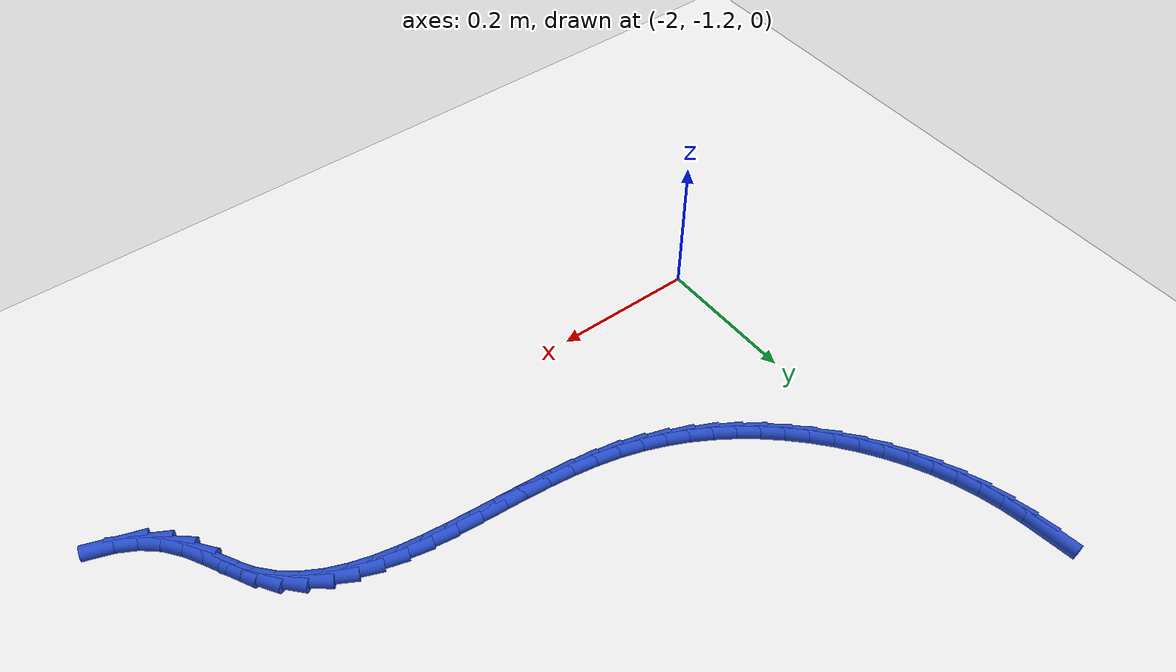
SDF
<sdf version="1.6">
 <world name="default">
  <model name="ground_plane">
   <static>1</static>
   <link name="link">
    <collision name="collision">
     <geometry><plane><normal>0 0 1</normal><size>100 100</size></plane></geometry>
     <surface><friction><ode><mu>100</mu><mu2>50</mu2></ode></friction></surface>
    </collision>
    <visual name="visual">
     <cast_shadows>0</cast_shadows>
     <geometry><plane><normal>0 0 1</normal><size>100 100</size></plane></geometry>
     <material>
      <script><uri>file://media/materials/scripts/gazebo.material</uri><name>Gazebo/WhiteGlow</name></script>
     </material>
    </visual>
   </link>
  </model>
  <model name="line">
   <link name="link_140">
    <pose>-2.0714910798249524 -0.6051874556800757 0.01 0 1.57 -1.4496317665027898</pose>
    <collision name="collision">
     <geometry><cylinder><radius>0.01</radius><length>0.08</length></cylinder></geometry>
    </collision>
    <visual name="visual">
     <material>
      <script><name>Gazebo/Blue</name><uri>file://media/materials/scripts/gazebo.material</uri></script>
     </material>
     <geometry><cylinder><radius>0.01</radius><length>0.08</length></cylinder></geometry>
    </visual>
   </link>
   <link name="link_141">
    <pose>-2.067826502386104 -0.6352839361686515 0.01 0 1.57 -1.396800653861809</pose>
    <collision name="collision">
     <geometry><cylinder><radius>0.01</radius><length>0.08</length></cylinder></geometry>
    </collision>
    <visual name="visual">
     <material>
      <script><name>Gazebo/Blue</name><uri>file://media/materials/scripts/gazebo.material</uri></script>
     </material>
     <geometry><cylinder><radius>0.01</radius><length>0.08</length></cylinder></geometry>
    </visual>
   </link>
   <link name="link_142">
    <pose>-2.0625897426218254 -0.6650766658199938 0.01 0 1.57 -1.3254043258606043</pose>
    <collision name="collision">
     <geometry><cylinder><radius>0.01</radius><length>0.08</length></cylinder></geometry>
    </collision>
    <visual name="visual">
     <material>
      <script><name>Gazebo/Blue</name><uri>file://media/materials/scripts/gazebo.material</uri></script>
     </material>
     <geometry><cylinder><radius>0.01</radius><length>0.08</length></cylinder></geometry>
    </visual>
   </link>
   <link name="link_143">
    <pose>-2.055215029842093 -0.6945237822621858 0.01 0 1.57 -1.2469748201648188</pose>
    <collision name="collision">
     <geometry><cylinder><radius>0.01</radius><length>0.08</length></cylinder></geometry>
    </collision>
    <visual name="visual">
     <material>
      <script><name>Gazebo/Blue</name><uri>file://media/materials/scripts/gazebo.material</uri></script>
     </material>
     <geometry><cylinder><radius>0.01</radius><length>0.08</length></cylinder></geometry>
    </visual>
   </link>
   <link name="link_144">
    <pose>-2.045477713850513 -0.7235353199080661 0.01 0 1.57 -1.172560728967666</pose>
    <collision name="collision">
     <geometry><cylinder><radius>0.01</radius><length>0.08</length></cylinder></geometry>
    </collision>
    <visual name="visual">
     <material>
      <script><name>Gazebo/Blue</name><uri>file://media/materials/scripts/gazebo.material</uri></script>
     </material>
     <geometry><cylinder><radius>0.01</radius><length>0.08</length></cylinder></geometry>
    </visual>
   </link>
   <link name="link_145">
    <pose>-2.0335146788780034 -0.7519703312778594 0.01 0 1.57 -1.1020550867594914</pose>
    <collision name="collision">
     <geometry><cylinder><radius>0.01</radius><length>0.08</length></cylinder></geometry>
    </collision>
    <visual name="visual">
     <material>
      <script><name>Gazebo/Blue</name><uri>file://media/materials/scripts/gazebo.material</uri></script>
     </material>
     <geometry><cylinder><radius>0.01</radius><length>0.08</length></cylinder></geometry>
    </visual>
   </link>
   <link name="link_146">
    <pose>-2.0194802227610165 -0.7796854133066495 0.01 0 1.57 -1.0347551219731126</pose>
    <collision name="collision">
     <geometry><cylinder><radius>0.01</radius><length>0.08</length></cylinder></geometry>
    </collision>
    <visual name="visual">
     <material>
      <script><name>Gazebo/Blue</name><uri>file://media/materials/scripts/gazebo.material</uri></script>
     </material>
     <geometry><cylinder><radius>0.01</radius><length>0.08</length></cylinder></geometry>
    </visual>
   </link>
   <link name="link_147">
    <pose>-2.003528643336007 -0.8065371629295213 0.01 0 1.57 -0.9699302611434654</pose>
    <collision name="collision">
     <geometry><cylinder><radius>0.01</radius><length>0.08</length></cylinder></geometry>
    </collision>
    <visual name="visual">
     <material>
      <script><name>Gazebo/Blue</name><uri>file://media/materials/scripts/gazebo.material</uri></script>
     </material>
     <geometry><cylinder><radius>0.01</radius><length>0.08</length></cylinder></geometry>
    </visual>
   </link>
   <link name="link_148">
    <pose>-1.9858142384394282 -0.8323821770815565 0.01 0 1.57 -0.9068378614010528</pose>
    <collision name="collision">
     <geometry><cylinder><radius>0.01</radius><length>0.08</length></cylinder></geometry>
    </collision>
    <visual name="visual">
     <material>
      <script><name>Gazebo/Blue</name><uri>file://media/materials/scripts/gazebo.material</uri></script>
     </material>
     <geometry><cylinder><radius>0.01</radius><length>0.08</length></cylinder></geometry>
    </visual>
   </link>
   <link name="link_149">
    <pose>-1.9664913059077331 -0.8570770526978398 0.01 0 1.57 -0.8447277502160433</pose>
    <collision name="collision">
     <geometry><cylinder><radius>0.01</radius><length>0.08</length></cylinder></geometry>
    </collision>
    <visual name="visual">
     <material>
      <script><name>Gazebo/Blue</name><uri>file://media/materials/scripts/gazebo.material</uri></script>
     </material>
     <geometry><cylinder><radius>0.01</radius><length>0.08</length></cylinder></geometry>
    </visual>
   </link>
   <link name="link_150">
    <pose>-1.945714143577377 -0.8804783867134556 0.01 0 1.57 -0.7828391057275949</pose>
    <collision name="collision">
     <geometry><cylinder><radius>0.01</radius><length>0.08</length></cylinder></geometry>
    </collision>
    <visual name="visual">
     <material>
      <script><name>Gazebo/Blue</name><uri>file://media/materials/scripts/gazebo.material</uri></script>
     </material>
     <geometry><cylinder><radius>0.01</radius><length>0.08</length></cylinder></geometry>
    </visual>
   </link>
   <link name="link_151">
    <pose>-1.9236370492848116 -0.9024427760634871 0.01 0 1.57 -0.7203768121503481</pose>
    <collision name="collision">
     <geometry><cylinder><radius>0.01</radius><length>0.08</length></cylinder></geometry>
    </collision>
    <visual name="visual">
     <material>
      <script><name>Gazebo/Blue</name><uri>file://media/materials/scripts/gazebo.material</uri></script>
     </material>
     <geometry><cylinder><radius>0.01</radius><length>0.08</length></cylinder></geometry>
    </visual>
   </link>
   <link name="link_152">
    <pose>-1.9004126936851478 -0.9228276010529144 0.01 0 1.57 -0.6559956627781156</pose>
    <collision name="collision">
     <geometry><cylinder><radius>0.01</radius><length>0.08</length></cylinder></geometry>
    </collision>
    <visual name="visual">
     <material>
      <script><name>Gazebo/Blue</name><uri>file://media/materials/scripts/gazebo.material</uri></script>
     </material>
     <geometry><cylinder><radius>0.01</radius><length>0.08</length></cylinder></geometry>
    </visual>
   </link>
   <link name="link_153">
    <pose>-1.8761205088211075 -0.9415255010710467 0.01 0 1.57 -0.588850892856853</pose>
    <collision name="collision">
     <geometry><cylinder><radius>0.01</radius><length>0.08</length></cylinder></geometry>
    </collision>
    <visual name="visual">
     <material>
      <script><name>Gazebo/Blue</name><uri>file://media/materials/scripts/gazebo.material</uri></script>
     </material>
     <geometry><cylinder><radius>0.01</radius><length>0.08</length></cylinder></geometry>
    </visual>
   </link>
   <link name="link_154">
    <pose>-1.850738572444311 -0.9584779102533032 0.01 0 1.57 -0.5193872267687983</pose>
    <collision name="collision">
     <geometry><cylinder><radius>0.01</radius><length>0.08</length></cylinder></geometry>
    </collision>
    <visual name="visual">
     <material>
      <script><name>Gazebo/Blue</name><uri>file://media/materials/scripts/gazebo.material</uri></script>
     </material>
     <geometry><cylinder><radius>0.01</radius><length>0.08</length></cylinder></geometry>
    </visual>
   </link>
   <link name="link_155">
    <pose>-1.824237525255256 -0.9736298431362609 0.01 0 1.57 -0.4482458490308421</pose>
    <collision name="collision">
     <geometry><cylinder><radius>0.01</radius><length>0.08</length></cylinder></geometry>
    </collision>
    <visual name="visual">
     <material>
      <script><name>Gazebo/Blue</name><uri>file://media/materials/scripts/gazebo.material</uri></script>
     </material>
     <geometry><cylinder><radius>0.01</radius><length>0.08</length></cylinder></geometry>
    </visual>
   </link>
   <link name="link_156">
    <pose>-1.7965880079544445 -0.9869263142564965 0.01 0 1.57 -0.3761652669788176</pose>
    <collision name="collision">
     <geometry><cylinder><radius>0.01</radius><length>0.08</length></cylinder></geometry>
    </collision>
    <visual name="visual">
     <material>
      <script><name>Gazebo/Blue</name><uri>file://media/materials/scripts/gazebo.material</uri></script>
     </material>
     <geometry><cylinder><radius>0.01</radius><length>0.08</length></cylinder></geometry>
    </visual>
   </link>
   <link name="link_157">
    <pose>-1.7677606612423749 -0.9983123381505873 0.01 0 1.57 -0.3039400680792419</pose>
    <collision name="collision">
     <geometry><cylinder><radius>0.01</radius><length>0.08</length></cylinder></geometry>
    </collision>
    <visual name="visual">
     <material>
      <script><name>Gazebo/Blue</name><uri>file://media/materials/scripts/gazebo.material</uri></script>
     </material>
     <geometry><cylinder><radius>0.01</radius><length>0.08</length></cylinder></geometry>
    </visual>
   </link>
   <link name="link_158">
    <pose>-1.7377261258195473 -1.0077329293551116 0.01 0 1.57 -0.23257311673044273</pose>
    <collision name="collision">
     <geometry><cylinder><radius>0.01</radius><length>0.08</length></cylinder></geometry>
    </collision>
    <visual name="visual">
     <material>
      <script><name>Gazebo/Blue</name><uri>file://media/materials/scripts/gazebo.material</uri></script>
     </material>
     <geometry><cylinder><radius>0.01</radius><length>0.08</length></cylinder></geometry>
    </visual>
   </link>
   <link name="link_159">
    <pose>-1.7064589490324187 -1.0151388474466236 0.01 0 1.57 -0.16974561627815368</pose>
    <collision name="collision">
     <geometry><cylinder><radius>0.01</radius><length>0.08</length></cylinder></geometry>
    </collision>
    <visual name="visual">
     <material>
      <script><name>Gazebo/Blue</name><uri>file://media/materials/scripts/gazebo.material</uri></script>
     </material>
     <geometry><cylinder><radius>0.01</radius><length>0.08</length></cylinder></geometry>
    </visual>
   </link>
   <link name="link_160">
    <pose>-1.6740753750166828 -1.0206892286315714 0.01 0 1.57 -0.12333634016094697</pose>
    <collision name="collision">
     <geometry><cylinder><radius>0.01</radius><length>0.08</length></cylinder></geometry>
    </collision>
    <visual name="visual">
     <material>
      <script><name>Gazebo/Blue</name><uri>file://media/materials/scripts/gazebo.material</uri></script>
     </material>
     <geometry><cylinder><radius>0.01</radius><length>0.08</length></cylinder></geometry>
    </visual>
   </link>
   <link name="link_161">
    <pose>-1.6408700383888801 -1.0248055467981834 0.01 0 1.57 -0.09227412209854519</pose>
    <collision name="collision">
     <geometry><cylinder><radius>0.01</radius><length>0.08</length></cylinder></geometry>
    </collision>
    <visual name="visual">
     <material>
      <script><name>Gazebo/Blue</name><uri>file://media/materials/scripts/gazebo.material</uri></script>
     </material>
     <geometry><cylinder><radius>0.01</radius><length>0.08</length></cylinder></geometry>
    </visual>
   </link>
   <link name="link_162">
    <pose>-1.6071489413657474 -1.0279259928134672 0.01 0 1.57 -0.07538590216871738</pose>
    <collision name="collision">
     <geometry><cylinder><radius>0.01</radius><length>0.08</length></cylinder></geometry>
    </collision>
    <visual name="visual">
     <material>
      <script><name>Gazebo/Blue</name><uri>file://media/materials/scripts/gazebo.material</uri></script>
     </material>
     <geometry><cylinder><radius>0.01</radius><length>0.08</length></cylinder></geometry>
    </visual>
   </link>
   <link name="link_163">
    <pose>-1.5732180861640217 -1.0304887575444293 0.01 0 1.57 -0.07208714857692498</pose>
    <collision name="collision">
     <geometry><cylinder><radius>0.01</radius><length>0.08</length></cylinder></geometry>
    </collision>
    <visual name="visual">
     <material>
      <script><name>Gazebo/Blue</name><uri>file://media/materials/scripts/gazebo.material</uri></script>
     </material>
     <geometry><cylinder><radius>0.01</radius><length>0.08</length></cylinder></geometry>
    </visual>
   </link>
   <link name="link_164">
    <pose>-1.539383475000439 -1.0329320318580775 0.01 0 1.57 -0.08242662006340132</pose>
    <collision name="collision">
     <geometry><cylinder><radius>0.01</radius><length>0.08</length></cylinder></geometry>
    </collision>
    <visual name="visual">
     <material>
      <script><name>Gazebo/Blue</name><uri>file://media/materials/scripts/gazebo.material</uri></script>
     </material>
     <geometry><cylinder><radius>0.01</radius><length>0.08</length></cylinder></geometry>
    </visual>
   </link>
   <link name="link_165">
    <pose>-1.5059511100917362 -1.0356940066214195 0.01 0 1.57 -0.10711966992888053</pose>
    <collision name="collision">
     <geometry><cylinder><radius>0.01</radius><length>0.08</length></cylinder></geometry>
    </collision>
    <visual name="visual">
     <material>
      <script><name>Gazebo/Blue</name><uri>file://media/materials/scripts/gazebo.material</uri></script>
     </material>
     <geometry><cylinder><radius>0.01</radius><length>0.08</length></cylinder></geometry>
    </visual>
   </link>
   <link name="link_166">
    <pose>-1.4732269936546496 -1.039212872701462 0.01 0 1.57 -0.1475779314057734</pose>
    <collision name="collision">
     <geometry><cylinder><radius>0.01</radius><length>0.08</length></cylinder></geometry>
    </collision>
    <visual name="visual">
     <material>
      <script><name>Gazebo/Blue</name><uri>file://media/materials/scripts/gazebo.material</uri></script>
     </material>
     <geometry><cylinder><radius>0.01</radius><length>0.08</length></cylinder></geometry>
    </visual>
   </link>
   <link name="link_167">
    <pose>-1.4415171279059147 -1.0439268209652117 0.01 0 1.57 -0.20590156967867418</pose>
    <collision name="collision">
     <geometry><cylinder><radius>0.01</radius><length>0.08</length></cylinder></geometry>
    </collision>
    <visual name="visual">
     <material>
      <script><name>Gazebo/Blue</name><uri>file://media/materials/scripts/gazebo.material</uri></script>
     </material>
     <geometry><cylinder><radius>0.01</radius><length>0.08</length></cylinder></geometry>
    </visual>
   </link>
   <link name="link_168">
    <pose>-1.411127515062269 -1.0502740422796766 0.01 0 1.57 -0.2847349700845698</pose>
    <collision name="collision">
     <geometry><cylinder><radius>0.01</radius><length>0.08</length></cylinder></geometry>
    </collision>
    <visual name="visual">
     <material>
      <script><name>Gazebo/Blue</name><uri>file://media/materials/scripts/gazebo.material</uri></script>
     </material>
     <geometry><cylinder><radius>0.01</radius><length>0.08</length></cylinder></geometry>
    </visual>
   </link>
   <link name="link_169">
    <pose>-1.3823641573404493 -1.0586927275118638 0.01 0 1.57 -0.3867846461312361</pose>
    <collision name="collision">
     <geometry><cylinder><radius>0.01</radius><length>0.08</length></cylinder></geometry>
    </collision>
    <visual name="visual">
     <material>
      <script><name>Gazebo/Blue</name><uri>file://media/materials/scripts/gazebo.material</uri></script>
     </material>
     <geometry><cylinder><radius>0.01</radius><length>0.08</length></cylinder></geometry>
    </visual>
   </link>
   <link name="link_170">
    <pose>-1.3555330569571904 -1.0696210675287812 0.01 0 1.57 -0.5137078262823219</pose>
    <collision name="collision">
     <geometry><cylinder><radius>0.01</radius><length>0.08</length></cylinder></geometry>
    </collision>
    <visual name="visual">
     <material>
      <script><name>Gazebo/Blue</name><uri>file://media/materials/scripts/gazebo.material</uri></script>
     </material>
     <geometry><cylinder><radius>0.01</radius><length>0.08</length></cylinder></geometry>
    </visual>
   </link>
   <link name="link_171">
    <pose>-1.3309402161292305 -1.083497253197435 0.01 0 1.57 -0.6642377501976638</pose>
    <collision name="collision">
     <geometry><cylinder><radius>0.01</radius><length>0.08</length></cylinder></geometry>
    </collision>
    <visual name="visual">
     <material>
      <script><name>Gazebo/Blue</name><uri>file://media/materials/scripts/gazebo.material</uri></script>
     </material>
     <geometry><cylinder><radius>0.01</radius><length>0.08</length></cylinder></geometry>
    </visual>
   </link>
   <link name="link_172">
    <pose>-1.3088916370733055 -1.1007594753848327 0.01 0 1.57 -0.8322335798260844</pose>
    <collision name="collision">
     <geometry><cylinder><radius>0.01</radius><length>0.08</length></cylinder></geometry>
    </collision>
    <visual name="visual">
     <material>
      <script><name>Gazebo/Blue</name><uri>file://media/materials/scripts/gazebo.material</uri></script>
     </material>
     <geometry><cylinder><radius>0.01</radius><length>0.08</length></cylinder></geometry>
    </visual>
   </link>
   <link name="link_173">
    <pose>-1.2896933220061522 -1.121845924957982 0.01 0 1.57 -0.999148480296795</pose>
    <collision name="collision">
     <geometry><cylinder><radius>0.01</radius><length>0.08</length></cylinder></geometry>
    </collision>
    <visual name="visual">
     <material>
      <script><name>Gazebo/Blue</name><uri>file://media/materials/scripts/gazebo.material</uri></script>
     </material>
     <geometry><cylinder><radius>0.01</radius><length>0.08</length></cylinder></geometry>
    </visual>
   </link>
   <link name="link_174">
    <pose>-1.2735081250835028 -1.1470057276363574 0.01 0 1.57 -1.083587024716603</pose>
    <collision name="collision">
     <geometry><cylinder><radius>0.01</radius><length>0.08</length></cylinder></geometry>
    </collision>
    <visual name="visual">
     <material>
      <script><name>Gazebo/Blue</name><uri>file://media/materials/scripts/gazebo.material</uri></script>
     </material>
     <geometry><cylinder><radius>0.01</radius><length>0.08</length></cylinder></geometry>
    </visual>
   </link>
   <link name="link_175">
    <pose>-1.2589629439361567 -1.1744593693873173 0.01 0 1.57 -1.0535057661337999</pose>
    <collision name="collision">
     <geometry><cylinder><radius>0.01</radius><length>0.08</length></cylinder></geometry>
    </collision>
    <visual name="visual">
     <material>
      <script><name>Gazebo/Blue</name><uri>file://media/materials/scripts/gazebo.material</uri></script>
     </material>
     <geometry><cylinder><radius>0.01</radius><length>0.08</length></cylinder></geometry>
    </visual>
   </link>
   <link name="link_176">
    <pose>-1.2437513727373946 -1.2011946603413888 0.01 0 1.57 -0.9070413777179281</pose>
    <collision name="collision">
     <geometry><cylinder><radius>0.01</radius><length>0.08</length></cylinder></geometry>
    </collision>
    <visual name="visual">
     <material>
      <script><name>Gazebo/Blue</name><uri>file://media/materials/scripts/gazebo.material</uri></script>
     </material>
     <geometry><cylinder><radius>0.01</radius><length>0.08</length></cylinder></geometry>
    </visual>
   </link>
   <link name="link_177">
    <pose>-1.2256670595533212 -1.2243162639534395 0.01 0 1.57 -0.7051184958618684</pose>
    <collision name="collision">
     <geometry><cylinder><radius>0.01</radius><length>0.08</length></cylinder></geometry>
    </collision>
    <visual name="visual">
     <material>
      <script><name>Gazebo/Blue</name><uri>file://media/materials/scripts/gazebo.material</uri></script>
     </material>
     <geometry><cylinder><radius>0.01</radius><length>0.08</length></cylinder></geometry>
    </visual>
   </link>
   <link name="link_178">
    <pose>-1.2040262973987765 -1.2427342005946984 0.01 0 1.57 -0.5115374827965645</pose>
    <collision name="collision">
     <geometry><cylinder><radius>0.01</radius><length>0.08</length></cylinder></geometry>
    </collision>
    <visual name="visual">
     <material>
      <script><name>Gazebo/Blue</name><uri>file://media/materials/scripts/gazebo.material</uri></script>
     </material>
     <geometry><cylinder><radius>0.01</radius><length>0.08</length></cylinder></geometry>
    </visual>
   </link>
   <link name="link_179">
    <pose>-1.1792356245099056 -1.2566511634636723 0.01 0 1.57 -0.33726266892654877</pose>
    <collision name="collision">
     <geometry><cylinder><radius>0.01</radius><length>0.08</length></cylinder></geometry>
    </collision>
    <visual name="visual">
     <material>
      <script><name>Gazebo/Blue</name><uri>file://media/materials/scripts/gazebo.material</uri></script>
     </material>
     <geometry><cylinder><radius>0.01</radius><length>0.08</length></cylinder></geometry>
    </visual>
   </link>
  </model>
 </world>
</sdf>
